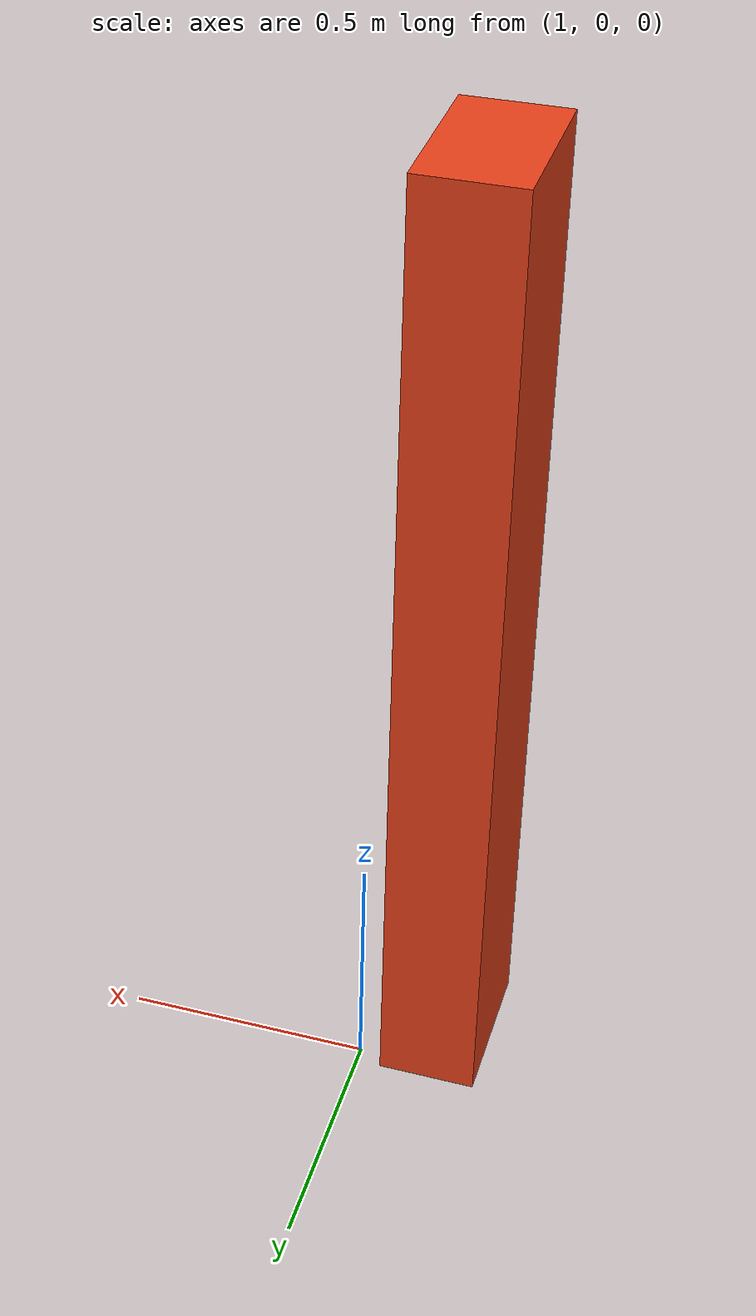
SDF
<?xml version="1.0" ?>
<sdf version="1.6">
  <model name="planar_avoidance_obstacle">
    <static>true</static>
    <link name="blocking_box">
      <pose>0.85 -0.13 1.00 0 0 0</pose>
      <collision name="collision">
        <geometry><box><size>0.20 0.32 2.00</size></box></geometry>
      </collision>
      <visual name="visual">
        <geometry><box><size>0.20 0.32 2.00</size></box></geometry>
        <material>
          <ambient>0.90 0.25 0.10 1</ambient>
          <diffuse>0.90 0.25 0.10 1</diffuse>
        </material>
      </visual>
    </link>
  </model>
</sdf>
